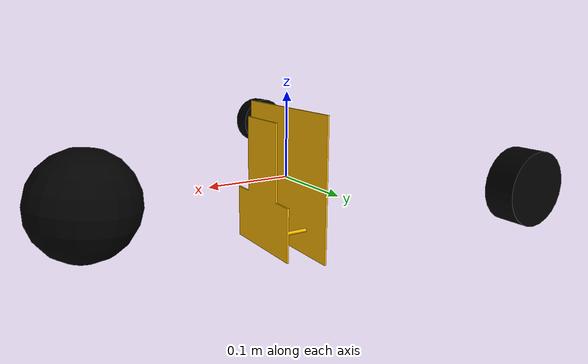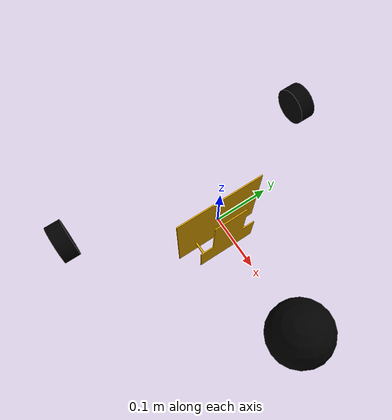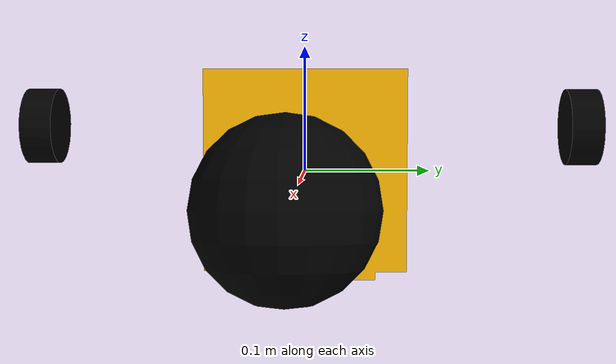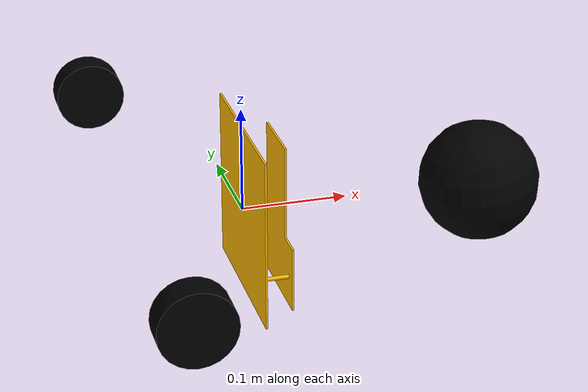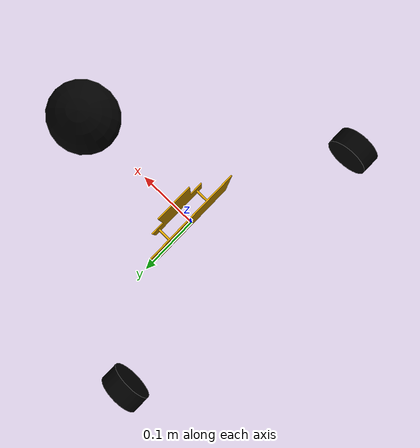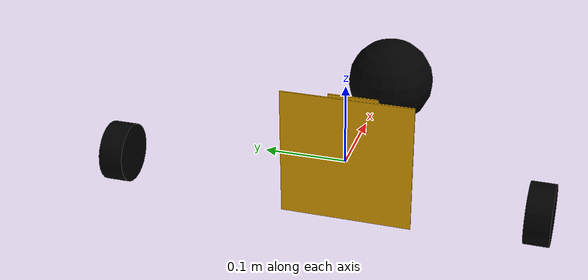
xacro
<?xml version='1.0'?>

<robot name="robot" xmlns:xacro="http://www.ros.org/wiki/xacro">

  <xacro:include filename="$(find robot)/urdf/robot.gazebo" />

  <material name="black">
    <color rgba="0 0 0 1"/>
  </material>

  <link name='robot_footprint'> </link>

  <joint name="robot_footprint_joint" type="fixed">
    <origin xyz="0 0 0" rpy="0 0 0" />
    <parent link="robot_footprint"/>
    <child link="morla_chassis" />
  </joint>

  <link name='morla_chassis'>
    <pose>0 0 0 0 0 0</pose>

    <inertial>
      <mass value="2"/>
      <origin xyz="0 0 0" rpy=" 1.5707 0 1.5707"/>
      <inertia
          ixx="0.004889713" ixy="0" ixz="0"
          iyy="0.004008093" iyz="0.000240565"
          izz="0.008040018"
      />
    </inertial>

    <collision name='chassis_collision'>
      <origin xyz="0 0 0" rpy=" 1.5707 0 1.5707"/>
      <geometry>
        <mesh filename="package://morla/meshes/morlaChassis.dae"/>
      </geometry>
    </collision>

    <visual name='chassis_visual'>
      <origin xyz="0 0 0" rpy=" 1.5707 0 1.5707"/>
      <geometry>
        <mesh filename="package://morla/meshes/morlaChassis.dae"/>
      </geometry>
    </visual>
  </link>

  <link name='left_wheel'>
    <pose>0 0 0 0 0 0</pose>

    <inertial>
      <mass value="5.35"/>
      <origin xyz="0 0 0" rpy="0 0 0"/>
      <inertia
          ixx="0.000225" ixy="0" ixz="0"
          iyy="0.000225" iyz="0"
          izz="0.0004375"
      />
    </inertial>

    <collision name='left_wheel_collision'>
      <origin xyz="0 0 0" rpy="0 0 0"/>
      <geometry>
        <cylinder radius="0.034" length="0.028"/>
      </geometry>
    </collision>

    <visual name='left_wheel_visual'>
      <origin xyz="0 0 0" rpy="0 0 0"/>
      <geometry>
        <cylinder radius="0.034" length="0.028"/>
      </geometry>
      <material name="black"/>
    </visual>
  </link>

  <link name='right_wheel'>
    <pose>0 0 0 0 0 0</pose>

    <inertial>
      <mass value="5.35"/>
      <origin xyz="0 0 0" rpy="0 0 0"/>
      <inertia
          ixx="0.000225" ixy="0" ixz="0"
          iyy="0.000225" iyz="0"
          izz="0.0004375"
      />
    </inertial>

    <collision name='right_wheel_collision'>
      <origin xyz="0 0 0" rpy="0 0 0"/>
      <geometry>
        <cylinder radius="0.034" length="0.028"/>
      </geometry>
    </collision>

    <visual name='right_wheel_visual'>
      <origin xyz="0 0 0" rpy="0 0 0"/>
      <geometry>
        <cylinder radius="0.034" length="0.028"/>
      </geometry>
      <material name="black"/>
    </visual>
  </link>

  <link name='omni_wheel'>
    <pose>0 0 0 0 0 0</pose>

    <inertial>
      <mass value="0.35"/>
      <origin xyz="0 0 0" rpy="0 0 0"/>
      <inertia
          ixx="0.0056" ixy="0" ixz="0"
          iyy="0.0056" iyz="0"
          izz="0.0056"
      />
    </inertial>

    <collision name='omni_wheel_collision'>
      <origin xyz="0 0 0" rpy="0 0 0"/>
      <geometry>
        <sphere radius="0.058"/>
      </geometry>
    </collision>

    <visual name='omni_wheel_visual'>
      <origin xyz="0 0 0" rpy="0 0 0"/>
      <geometry>
        <sphere radius="0.058"/>
      </geometry>
      <material name="black"/>
    </visual>
  </link>

<!-- links for sensors -->

  <!-- To control the face of camera link which will be used as camera, we make an invisible link -->
  <joint type="continuous" name="left_wheel_hinge">
    <origin xyz="-0.100266 -0.242145 0.03" rpy=" 0 -1.5707 1.5707"/>
    <child link="left_wheel"/>
    <parent link="morla_chassis"/>
    <axis xyz="0 0 1" rpy="0 0 0"/>
    <limit effort="10000" velocity="1000"/>
    <dynamics damping="1.0" friction="1.0"/>
  </joint>

  <joint type="continuous" name="right_wheel_hinge">
    <origin xyz="-0.100266 0.242145 0.03" rpy=" 0 -1.5707 1.5707"/>
    <child link="right_wheel"/>
    <parent link="morla_chassis"/>
    <axis xyz="0 0 1" rpy="0 0 0"/>
    <limit effort="10000" velocity="1000"/>
    <dynamics damping="1.0" friction="1.0"/>
  </joint>
  <joint type="continuous" name="omni_wheel_hinge">
    <origin xyz="0.233497 -0.000865 0" rpy="0.000212 -0.118296 -0.001802"/>
    <child link="omni_wheel"/>
    <parent link="morla_chassis"/>
    <axis xyz="0 0 1" rpy="0 0 0"/>
    <limit effort="10000" velocity="1000"/>
    <dynamics damping="1.0" friction="1.0"/>
  </joint>
  <gazebo reference="left_wheel">
    <material>Gazebo/Black</material>
  </gazebo>

  <gazebo reference="right_wheel">
    <material>Gazebo/Black</material>
  </gazebo>

  <gazebo reference="omni_wheel">
    <material>Gazebo/Black</material>
  </gazebo>

</robot>
